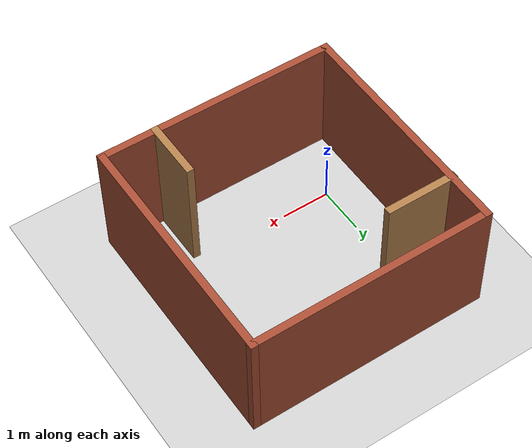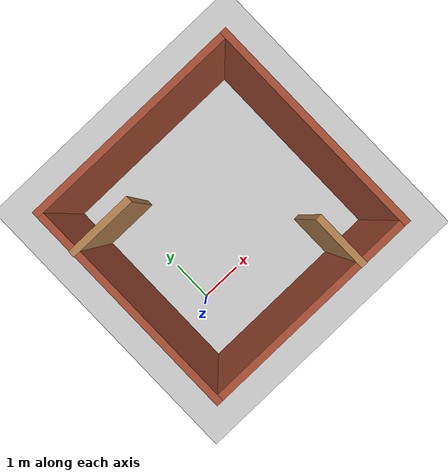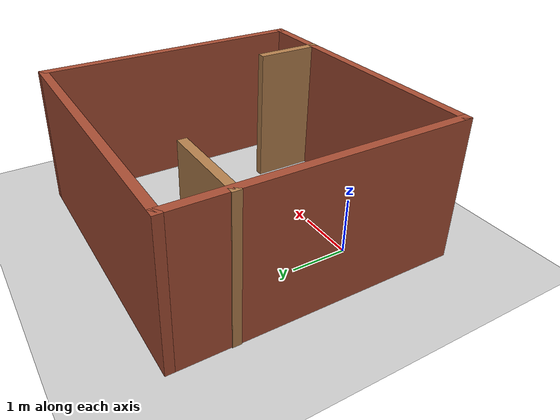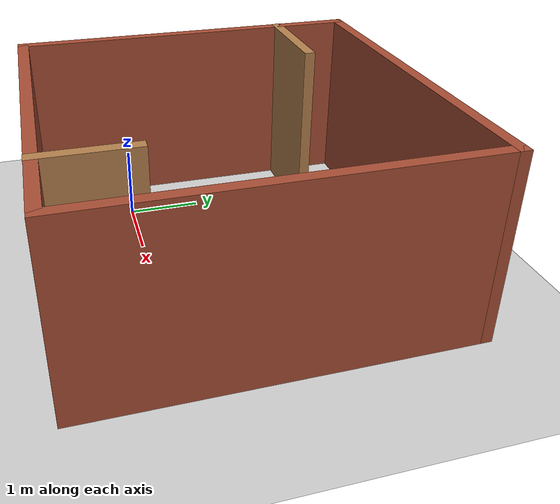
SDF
<sdf version="1.7">
 <world name="default">
  <light name="sun" type="directional">
   <pose>0 0 10 0 -0 0</pose>
   <diffuse>0.8 0.8 0.8 1</diffuse>
   <specular>0.2 0.2 0.2 1</specular>
   <attenuation>
    <range>1000</range>
    <constant>0.9</constant>
    <linear>0.01</linear>
    <quadratic>0.001</quadratic>
   </attenuation>
   <direction>-0.5 0.1 -0.9</direction>
   <spot><inner_angle>0</inner_angle><outer_angle>0</outer_angle><falloff>0</falloff></spot>
  </light>
  <model name="ground_plane">
   <static>1</static>
   <link name="link">
    <collision name="collision">
     <geometry><plane><normal>0 0 1</normal><size>100 100</size></plane></geometry>
     <surface><friction><ode><mu>100</mu><mu2>50</mu2></ode></friction></surface>
    </collision>
    <visual name="visual">
     <cast_shadows>0</cast_shadows>
     <geometry><plane><normal>0 0 1</normal><size>100 100</size></plane></geometry>
     <material>
      <script><uri>file://media/materials/scripts/gazebo.material</uri><name>Gazebo/Grey</name></script>
     </material>
    </visual>
   </link>
  </model>
  <gravity>0 0 -9.8</gravity>
  <magnetic_field>6e-06 2.3e-05 -4.2e-05</magnetic_field>
  <atmosphere type="adiabatic"/>
  <physics type="ode">
   <max_step_size>0.001</max_step_size>
   <real_time_factor>1</real_time_factor>
   <real_time_update_rate>1000</real_time_update_rate>
  </physics>
  <scene><ambient>0.4 0.4 0.4 1</ambient><background>0.7 0.7 0.7 1</background><shadows>1</shadows></scene>
  <audio><device>default</device></audio>
  <spherical_coordinates>
   <surface_model>EARTH_WGS84</surface_model>
   <latitude_deg>0</latitude_deg>
   <longitude_deg>0</longitude_deg>
   <elevation>0</elevation>
   <heading_deg>0</heading_deg>
  </spherical_coordinates>
  <model name="five">
   <pose>1.58057 1.12774 0 0 -0 0</pose>
   <link name="Wall_11">
    <collision name="Wall_11_Collision">
     <geometry><box><size>1.25 0.15 2.5</size></box></geometry>
     <pose>0 0 1.25 0 -0 0</pose>
    </collision>
    <visual name="Wall_11_Visual">
     <pose>0 0 1.25 0 -0 0</pose>
     <geometry><box><size>1.25 0.15 2.5</size></box></geometry>
     <material>
      <script><uri>file://media/materials/scripts/gazebo.material</uri><name>Gazebo/Wood</name></script>
      <ambient>1 1 1 1</ambient>
     </material>
     <meta><layer>0</layer></meta>
    </visual>
    <pose>1.30903 -1.87717 0 0 -0 1.5708</pose>
   </link>
   <link name="Wall_13">
    <collision name="Wall_13_Collision">
     <geometry><box><size>1.5 0.15 2.5</size></box></geometry>
     <pose>0 0 1.25 0 -0 0</pose>
    </collision>
    <visual name="Wall_13_Visual">
     <pose>0 0 1.25 0 -0 0</pose>
     <geometry><box><size>1.5 0.15 2.5</size></box></geometry>
     <material>
      <script><uri>file://media/materials/scripts/gazebo.material</uri><name>Gazebo/Wood</name></script>
      <ambient>1 1 1 1</ambient>
     </material>
     <meta><layer>0</layer></meta>
    </visual>
    <pose>-1.75709 1.43464 0 0 -0 0</pose>
   </link>
   <link name="Wall_5">
    <collision name="Wall_5_Collision">
     <geometry><box><size>5 0.15 2.5</size></box></geometry>
     <pose>0 0 1.25 0 -0 0</pose>
    </collision>
    <visual name="Wall_5_Visual">
     <pose>0 0 1.25 0 -0 0</pose>
     <geometry><box><size>5 0.15 2.5</size></box></geometry>
     <material>
      <script><uri>file://media/materials/scripts/gazebo.material</uri><name>Gazebo/Bricks</name></script>
      <ambient>1 1 1 1</ambient>
     </material>
     <meta><layer>0</layer></meta>
    </visual>
    <pose>2.43209 0.002168 0 0 -0 1.5708</pose>
   </link>
   <link name="Wall_6">
    <collision name="Wall_6_Collision">
     <geometry><box><size>5 0.15 2.5</size></box></geometry>
     <pose>0 0 1.25 0 -0 0</pose>
    </collision>
    <visual name="Wall_6_Visual">
     <pose>0 0 1.25 0 -0 0</pose>
     <geometry><box><size>5 0.15 2.5</size></box></geometry>
     <material>
      <script><uri>file://media/materials/scripts/gazebo.material</uri><name>Gazebo/Bricks</name></script>
      <ambient>1 1 1 1</ambient>
     </material>
     <meta><layer>0</layer></meta>
    </visual>
    <pose>0.007094 2.42717 0 0 -0 3.14159</pose>
   </link>
   <link name="Wall_7">
    <collision name="Wall_7_Collision">
     <geometry><box><size>5 0.15 2.5</size></box></geometry>
     <pose>0 0 1.25 0 -0 0</pose>
    </collision>
    <visual name="Wall_7_Visual">
     <pose>0 0 1.25 0 -0 0</pose>
     <geometry><box><size>5 0.15 2.5</size></box></geometry>
     <material>
      <script><uri>file://media/materials/scripts/gazebo.material</uri><name>Gazebo/Bricks</name></script>
      <ambient>1 1 1 1</ambient>
     </material>
     <meta><layer>0</layer></meta>
    </visual>
    <pose>-2.41791 0.002168 0 0 -0 -1.5708</pose>
   </link>
   <link name="Wall_9">
    <collision name="Wall_9_Collision">
     <geometry><box><size>5 0.15 2.5</size></box></geometry>
     <pose>0 0 1.25 0 -0 0</pose>
    </collision>
    <visual name="Wall_9_Visual">
     <pose>0 0 1.25 0 -0 0</pose>
     <geometry><box><size>5 0.15 2.5</size></box></geometry>
     <material>
      <script><uri>file://media/materials/scripts/gazebo.material</uri><name>Gazebo/Bricks</name></script>
      <ambient>1 1 1 1</ambient>
     </material>
     <meta><layer>0</layer></meta>
    </visual>
    <pose>0.007094 -2.42283 0 0 -0 0</pose>
   </link>
   <static>1</static>
  </model>
 </world>
</sdf>
